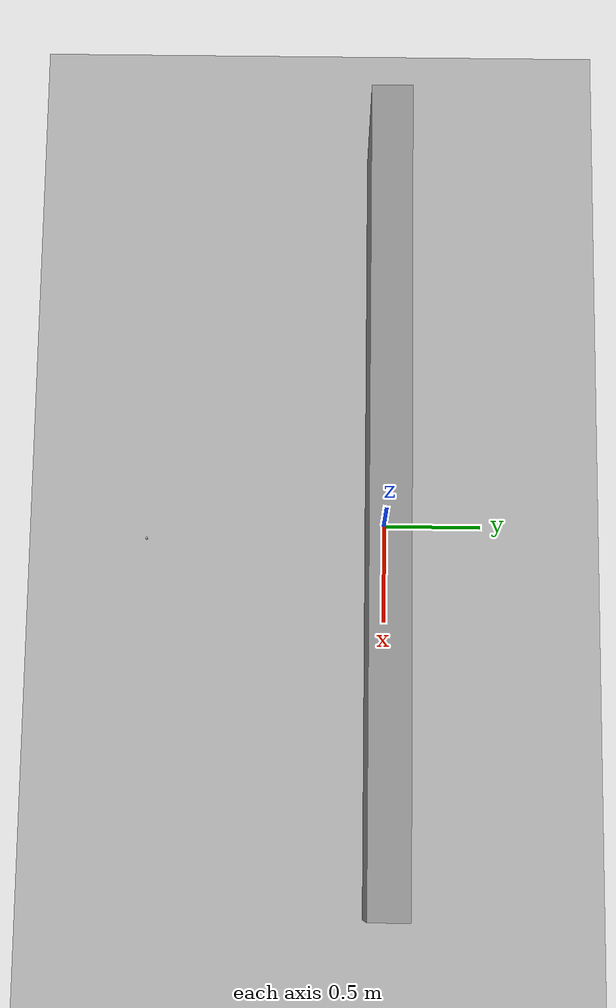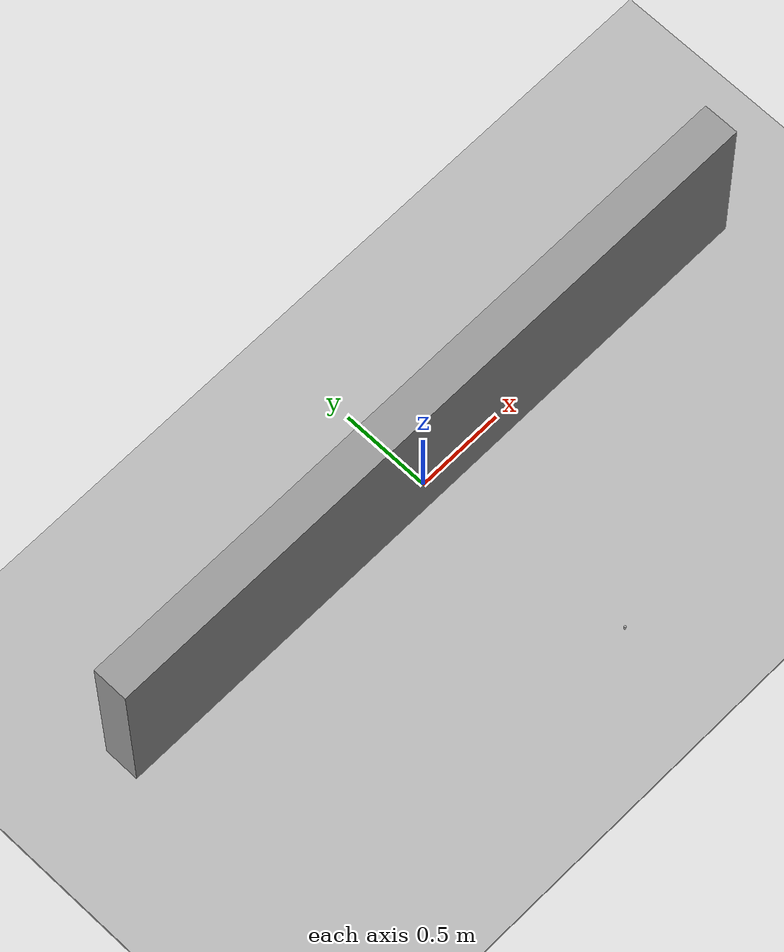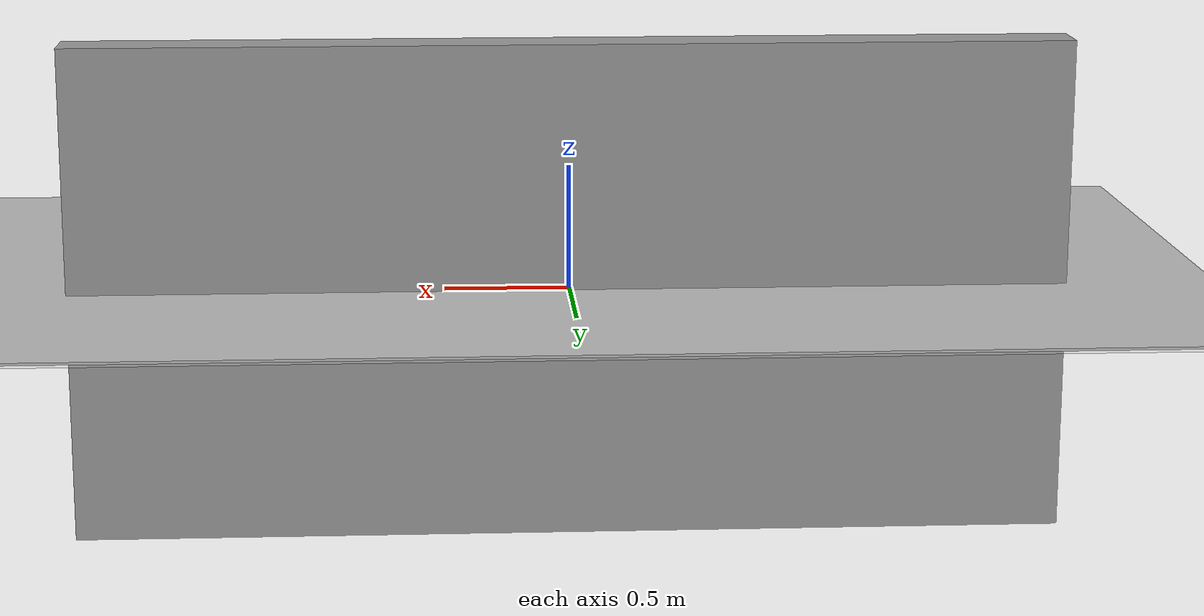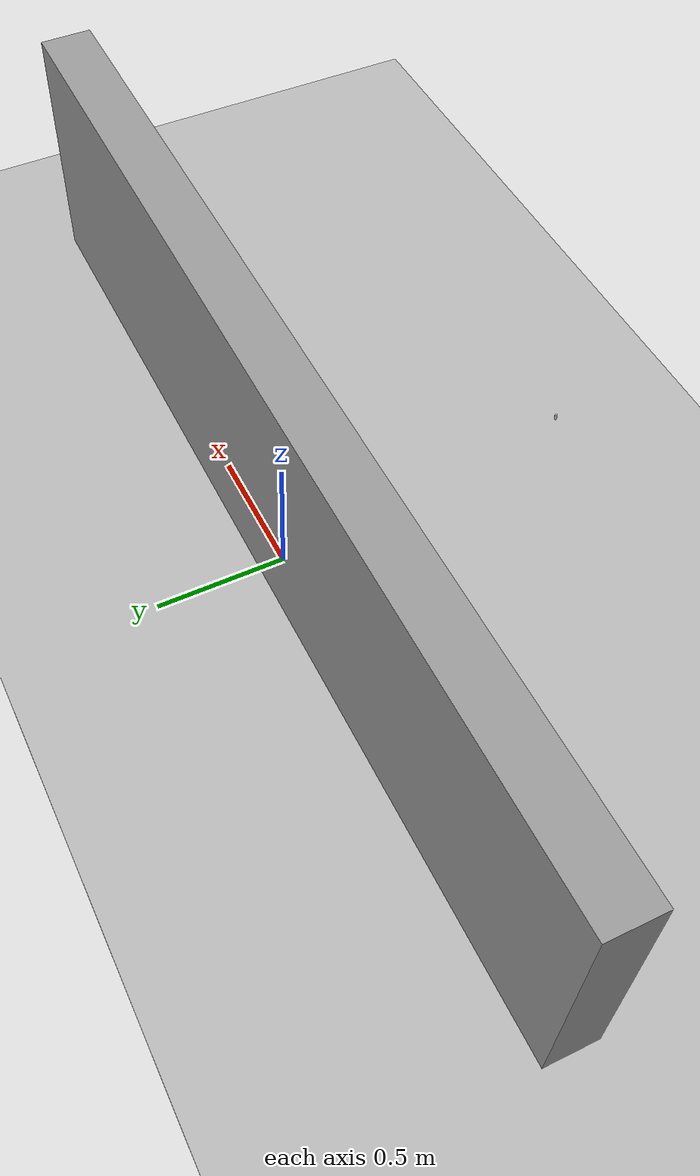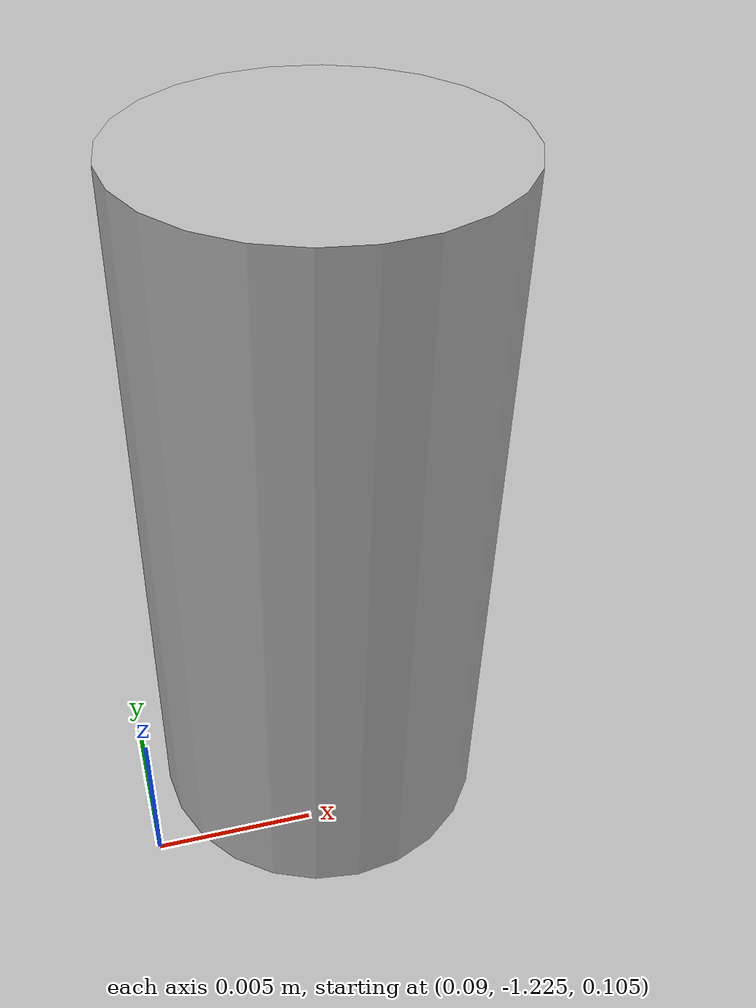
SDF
<sdf version="1.4">
 <world name="default">
  <scene><sky><clouds><speed>12</speed></clouds></sky></scene>
  <include><uri>model://sun</uri></include>
  <physics type="ode"><gravity>0.0 0.0 -9.81000000</gravity></physics>
  <include><uri>model://ground_plane</uri></include>
  <model name="piso2_model">
   <allow_auto_disable>0</allow_auto_disable>
   <pose>0.0 0.0 0.0100000 0.0 -0.0 0.0</pose>
   <link name="piso2_link">
    <collision name="piso2_geom">
     <geometry><box><size>18.0 18.0 0.0100000</size></box></geometry>
     <surface>
      <friction>
       <ode>
        <mu>0.9000000</mu>
        <mu2>0.9000000</mu2>
        <fdir1>0.0 0.0 0.0</fdir1>
        <slip1>0.0010000</slip1>
        <slip2>0.0010000</slip2>
       </ode>
      </friction>
      <bounce><restitution_coefficient>0.0</restitution_coefficient><threshold>100000.0</threshold></bounce>
      <contact>
       <ode>
        <soft_cfm>0.0</soft_cfm>
        <soft_erp>0.0</soft_erp>
        <kp>100000.0</kp>
        <kd>10.0</kd>
        <max_vel>100.0</max_vel>
        <min_depth>0.00</min_depth>
       </ode>
      </contact>
     </surface>
     <laser_retro>0.0</laser_retro>
    </collision>
    <visual name="piso2_geom_visual">
     <geometry><box><size>18.0 18.0 0.01000000</size></box></geometry>
     <material>
      <script><uri>file://media/materials/scripts/base.material</uri><name>mmdt/pisoHierba</name></script>
     </material>
     <laser_retro>0.0</laser_retro>
     <transparency>0.01</transparency>
    </visual>
   </link>
   <static>1</static>
  </model>
  <model name="grey_wallFront">
   <static>1</static>
   <link name="link">
    <visual name="visual">
     <cast_shadows>0</cast_shadows>
     <geometry><box><size>4 0.2 2</size></box></geometry>
     <material>
      <script>
       <uri>model://grey_wall/materials/scripts</uri>
       <uri>model://grey_wall/materials/textures</uri>
       <name>vrc/grey_wall</name>
      </script>
     </material>
    </visual>
   </link>
  </model>
  <model name="grey_wallTras">
   <static>1</static>
   <link name="link">
    <visual name="visual">
     <cast_shadows>0</cast_shadows>
     <geometry><box><size>4 0.2 2</size></box></geometry>
     <material>
      <script>
       <uri>model://grey_wall/materials/scripts</uri>
       <uri>model://grey_wall/materials/textures</uri>
       <name>vrc/grey_wall</name>
      </script>
     </material>
    </visual>
   </link>
  </model>
  <model name="beer">
   <link name="link">
    <pose>0 0 0.115 0 -0 0</pose>
    <visual name="visual">
     <geometry><cylinder><radius>0.0055</radius><length>0.023</length></cylinder></geometry>
     <material>
      <script>
       <uri>model://beer/materials/scripts</uri>
       <uri>model://beer/materials/textures</uri>
       <name>Beer/Diffuse</name>
      </script>
     </material>
    </visual>
   </link>
   <pose>0.096283 -1.22114 -7e-06 -1e-06 -0 -4e-06</pose>
  </model>
 </world>
</sdf>
